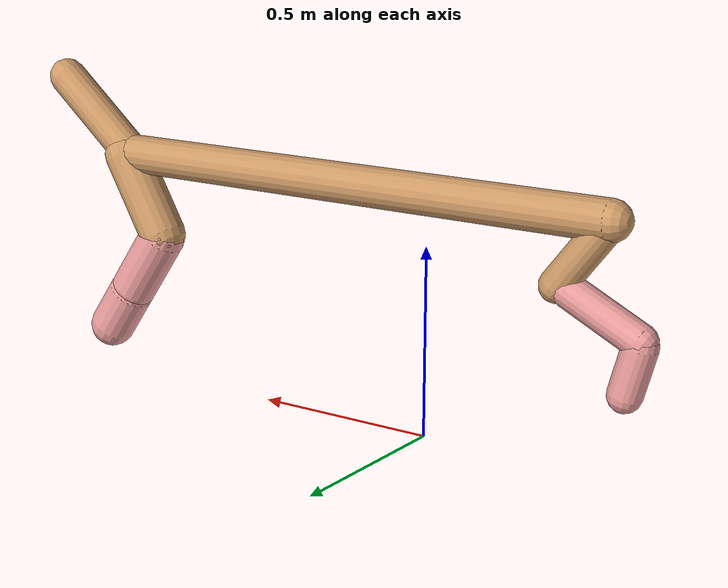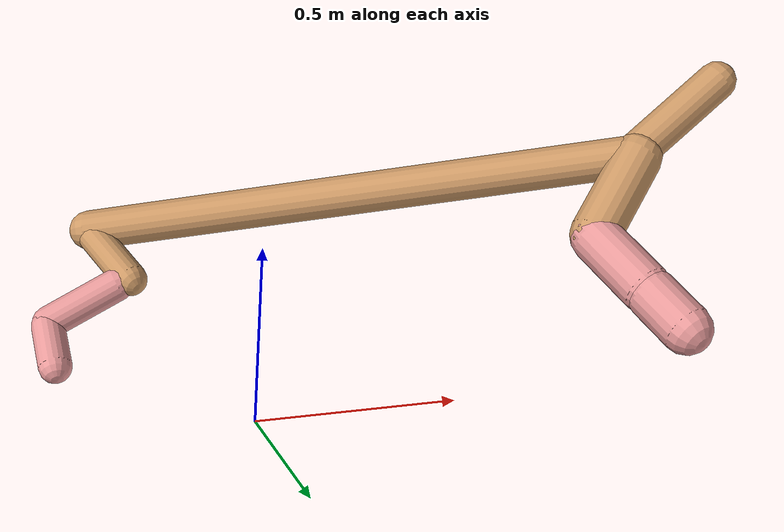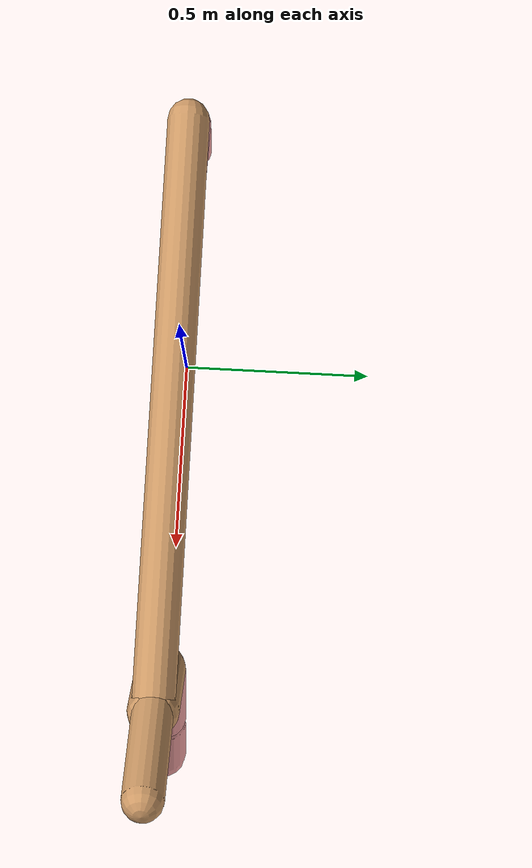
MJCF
<mujoco model="cheetah">
  <compiler angle="radian" coordinate="local" inertiafromgeom="true" settotalmass="14" />
  <default>
    <joint armature=".1" damping=".01" limited="true" solimplimit="0 .8 .03" solreflimit=".02 1" stiffness="8" />
    <geom conaffinity="0" condim="3" contype="1" friction="0.8 .1 .1" rgba="0.8 0.6 .4 1" solimp="0.0 0.8 0.01" solref="0.02 1" />
    <motor ctrllimited="true" ctrlrange="-1 1" />
  </default>
  <size nstack="300000" nuser_geom="1" />
  <option gravity="0 0 -9.81" timestep="0.01" />
  <worldbody>
    <body name="torso" pos="0.0 0.0 0.6337044949803563">
      <joint armature="0" axis="1 0 0" damping="0" limited="false" name="ignorex" pos="0 0 0" stiffness="0" type="slide" />
      <joint armature="0" axis="0 0 1" damping="0" limited="false" name="ignorez" pos="0 0 0" stiffness="0" type="slide" />
      <joint armature="0" axis="0 1 0" damping="0" limited="false" name="ignorey" pos="0 0 0" stiffness="0" type="hinge" />
      <geom fromto="-0.5 0.0 0.0 0.9920668268572244 0.0 0.0" name="torso" size="0.053060280129451375" type="capsule" />
      <geom axisangle="0 1 0 .87" name="head" pos="1.0920668268572244 0.0 0.1" size="0.05082838034414266 0.15" type="capsule" />

      <body name="bthigh" pos="-.5 0 0">
        <joint axis="0 1 0" damping="6" name="bthigh" pos="0 0 0" range="-.52 1.05" stiffness="240" type="hinge" />
        <geom axisangle="0 1 0 -3.8" name="bthigh" pos="0.0734775819030384 0.0 -0.0955208564739499" size="0.04407205763902861 0.10149999999999999" type="capsule" />
        <body name="bshin" pos="0.10695516380607678 0.0 -0.18104171294789978">
          <joint axis="0 1 0" damping="4.5" name="bshin" pos="0 0 0" range="-.785 .785" stiffness="180" type="hinge" />
          <geom axisangle="0 1 0 -2.03" name="bshin" pos="-0.0997507764050038 0.0 -0.0498753882025019" rgba="0.9 0.6 0.6 1" size="0.04407205763902861 0.105" type="capsule" />
          <body name="bfoot" pos="-0.1995015528100076 0.0 -0.0997507764050038">
            <joint axis="0 1 0" damping="3" name="bfoot" pos="0 0 0" range="-.4 .785" stiffness="120" type="hinge" />
            <geom axisangle="0 1 0 -.27" name="bfoot" pos="0.021667753813597694 0.0 -0.07005907066396588" rgba="0.9 0.6 0.6 1" size="0.04407205763902861 0.0658" type="capsule" />
            <inertial mass="10" />
          </body>
        </body>
      </body>
      <body name="fthigh" pos="0.9920668268572244 0.0 0.0">
        <joint axis="0 1 0" damping="4.5" name="fthigh" pos="0 0 0" range="-1.5 0.8" stiffness="180" type="hinge" />
        <geom axisangle="0 1 0 .52" name="fthigh" pos="-0.06535273735821057 0.0 -0.11203326404264666" size="0.06359433971552923 0.1237768805778111" type="capsule" />
        <body name="fshin" pos="-0.13070547471642113 0.0 -0.22406652808529331">
          <joint axis="0 1 0" damping="3" name="fshin" pos="0 0 0" range="-1.2 1.1" stiffness="120" type="hinge" />
          <geom axisangle="0 1 0 -.6" name="fshin" pos="0.0606962013108344 0.0 -0.08404089412269378" rgba="0.9 0.6 0.6 1" size="0.06359433971552923 0.09864924316727801" type="capsule" />
          <body name="ffoot" pos="0.1213924026216688 0.0 -0.16808178824538755">
            <joint axis="0 1 0" damping="1.5" name="ffoot" pos="0 0 0" range="-3.1 -0.3" stiffness="60" type="hinge" />
            <geom axisangle="0 1 0 -.6" name="ffoot" pos="0.042375014819400196 0.0 -0.06591668971906697" rgba="0.9 0.6 0.6 1" size="0.06359433971552923 0.06514572661990058" type="capsule" />
            <inertial mass="10" />
          </body>
        </body>
      </body>
    </body>
  </worldbody>
  <actuator>
    <motor gear="120" joint="bthigh" name="bthigh" />
    <motor gear="90" joint="bshin" name="bshin" />
    <motor gear="60" joint="bfoot" name="bfoot" />
    <motor gear="120" joint="fthigh" name="fthigh" />
    <motor gear="60" joint="fshin" name="fshin" />
    <motor gear="30" joint="ffoot" name="ffoot" />
  </actuator>
</mujoco>
